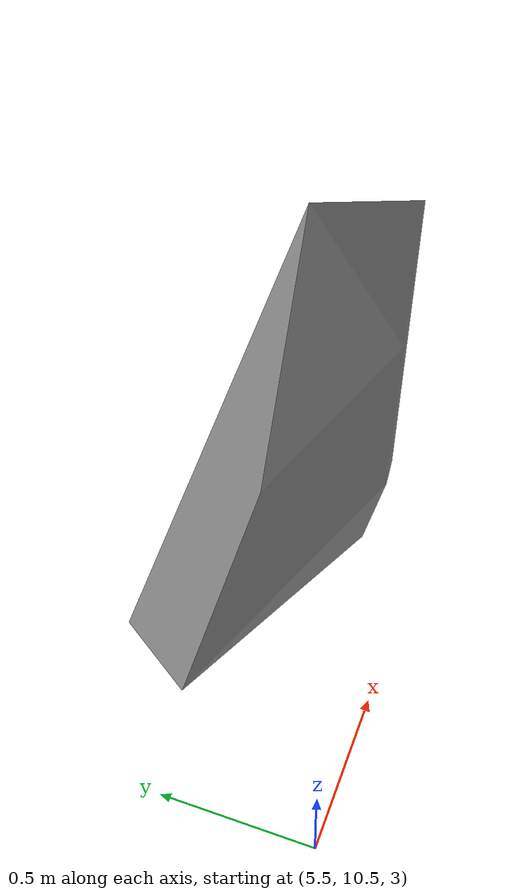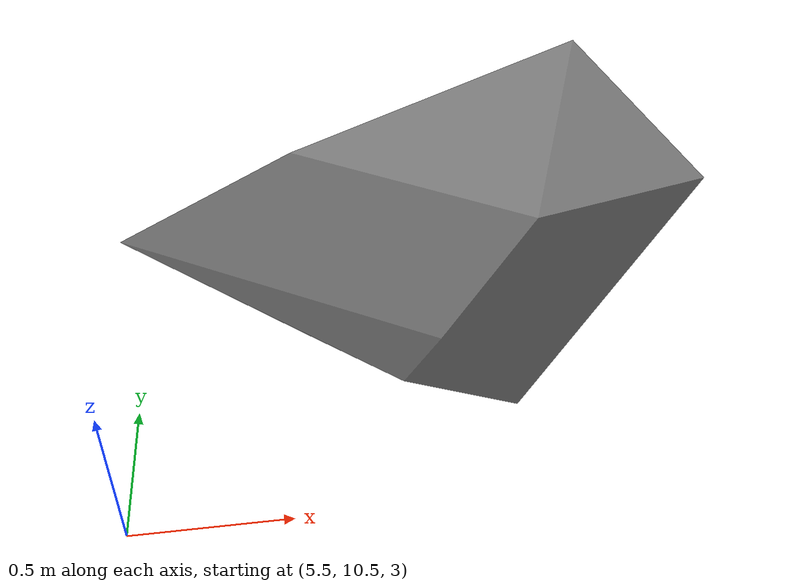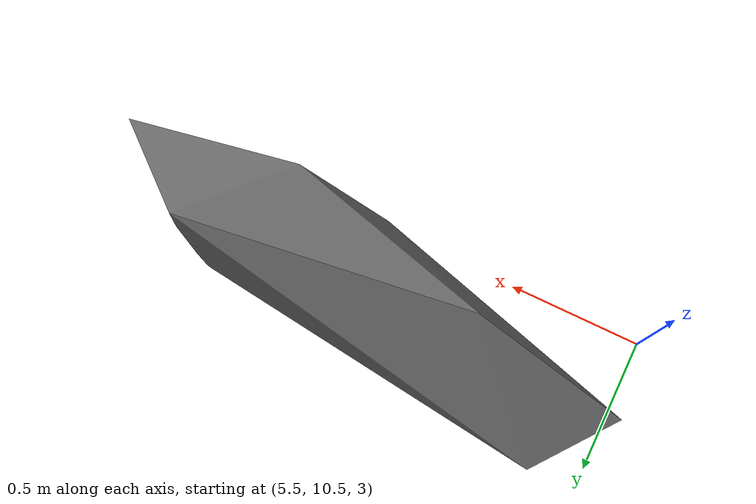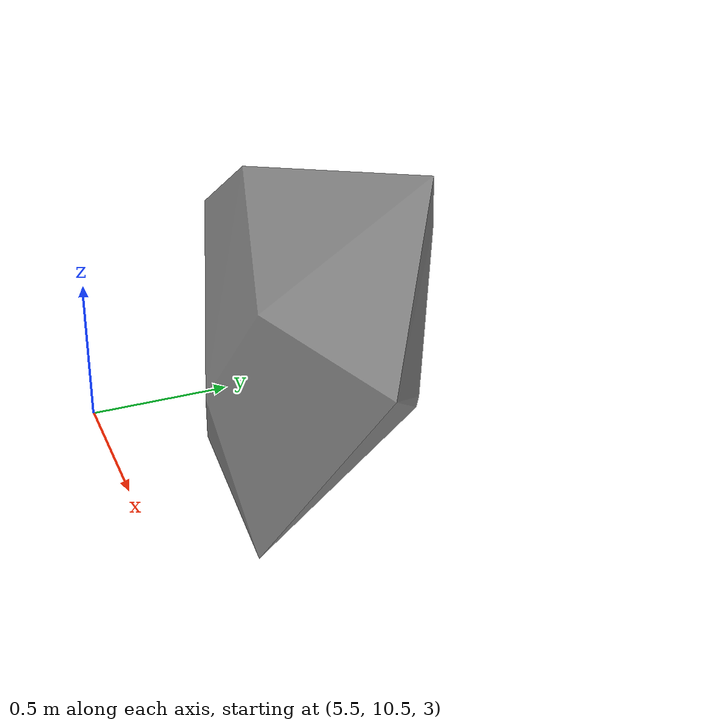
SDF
<sdf version="1.8">
 <model name="blue_mountains">
  <static>true</static>
  <link name="forest_20_21">
   <collision name="tree_31_trunk">
    <pose>6.379866 10.63728 1.888495 0 0 -1.860052</pose>
    <geometry><cylinder><radius>0.0576369</radius><length>2.956428</length></cylinder></geometry>
   </collision>
   <collision name="plant_31_crown_0">
    <pose>6.386442 10.65938 0.4102809 0 0 -1.860052</pose>
    <geometry>
     <mesh>
      <uri>model://blue_mountains/meshes/canopy_6_0.dae</uri>
      <scale>0.2305476 0.2305476 0.2179247</scale>
     </mesh>
    </geometry>
   </collision>
   <collision name="plant_31_crown_1">
    <pose>6.386442 10.65938 0.4102809 0 0 -1.860052</pose>
    <geometry>
     <mesh>
      <uri>model://blue_mountains/meshes/canopy_6_1.dae</uri>
      <scale>0.2305476 0.2305476 0.2179247</scale>
     </mesh>
    </geometry>
   </collision>
   <collision name="tree_49_trunk">
    <pose>8.976671 10.46936 2.442376 0 0 -0.8561324</pose>
    <geometry><cylinder><radius>0.06589054</radius><length>3.860585</length></cylinder></geometry>
   </collision>
   <collision name="plant_49_crown_0">
    <pose>8.959398 10.48927 0.5120838 0 0 -0.8561324</pose>
    <geometry>
     <mesh>
      <uri>model://blue_mountains/meshes/canopy_6_0.dae</uri>
      <scale>0.2635621 0.2635621 0.2845721</scale>
     </mesh>
    </geometry>
   </collision>
   <collision name="plant_49_crown_1">
    <pose>8.959398 10.48927 0.5120838 0 0 -0.8561324</pose>
    <geometry>
     <mesh>
      <uri>model://blue_mountains/meshes/canopy_6_1.dae</uri>
      <scale>0.2635621 0.2635621 0.2845721</scale>
     </mesh>
    </geometry>
   </collision>
   <collision name="tree_71_trunk">
    <pose>9.377768 12.89907 2.402436 0 0 -0.6208199</pose>
    <geometry><cylinder><radius>0.04854789</radius><length>2.449323</length></cylinder></geometry>
   </collision>
   <collision name="plant_71_crown_0">
    <pose>9.361973 12.91036 1.177774 0 0 -0.6208199</pose>
    <geometry>
     <mesh>
      <uri>model://blue_mountains/meshes/canopy_5_0.dae</uri>
      <scale>0.1941916 0.1941916 0.1841023</scale>
     </mesh>
    </geometry>
   </collision>
   <collision name="plant_71_crown_1">
    <pose>9.361973 12.91036 1.177774 0 0 -0.6208199</pose>
    <geometry>
     <mesh>
      <uri>model://blue_mountains/meshes/canopy_5_1.dae</uri>
      <scale>0.1941916 0.1941916 0.1841023</scale>
     </mesh>
    </geometry>
   </collision>
   <collision name="tree_98_trunk">
    <pose>3.744043 14.72555 2.073065 0 0 -0.6004613</pose>
    <geometry><cylinder><radius>0.04394124</radius><length>2.049709</length></cylinder></geometry>
   </collision>
   <collision name="plant_98_crown_0">
    <pose>3.729541 14.73548 1.04821 0 0 -0.6004613</pose>
    <geometry>
     <mesh><uri>model://blue_mountains/meshes/canopy_0_0.dae</uri><scale>0.175765 0.175765 0.1511649</scale></mesh>
    </geometry>
   </collision>
   <collision name="plant_98_crown_1">
    <pose>3.729541 14.73548 1.04821 0 0 -0.6004613</pose>
    <geometry>
     <mesh><uri>model://blue_mountains/meshes/canopy_0_1.dae</uri><scale>0.175765 0.175765 0.1511649</scale></mesh>
    </geometry>
   </collision>
   <collision name="tree_108_trunk">
    <pose>3.880536 13.56596 2.491982 0 0 -1.710862</pose>
    <geometry><cylinder><radius>0.0573226</radius><length>3.471873</length></cylinder></geometry>
   </collision>
   <collision name="plant_108_crown_0">
    <pose>3.883737 13.58866 0.7560458 0 0 -1.710862</pose>
    <geometry>
     <mesh>
      <uri>model://blue_mountains/meshes/canopy_3_0.dae</uri>
      <scale>0.2292904 0.2292904 0.2581176</scale>
     </mesh>
    </geometry>
   </collision>
   <collision name="plant_108_crown_1">
    <pose>3.883737 13.58866 0.7560458 0 0 -1.710862</pose>
    <geometry>
     <mesh>
      <uri>model://blue_mountains/meshes/canopy_3_1.dae</uri>
      <scale>0.2292904 0.2292904 0.2581176</scale>
     </mesh>
    </geometry>
   </collision>
   <collision name="tree_111_trunk">
    <pose>9.322657 13.23551 2.453729 0 0 -0.5603988</pose>
    <geometry><cylinder><radius>0.04911433</radius><length>2.334019</length></cylinder></geometry>
   </collision>
   <collision name="plant_111_crown_0">
    <pose>9.306016 13.24595 1.286719 0 0 -0.5603988</pose>
    <geometry>
     <mesh>
      <uri>model://blue_mountains/meshes/canopy_5_0.dae</uri>
      <scale>0.1964573 0.1964573 0.1754355</scale>
     </mesh>
    </geometry>
   </collision>
   <collision name="plant_111_crown_1">
    <pose>9.306016 13.24595 1.286719 0 0 -0.5603988</pose>
    <geometry>
     <mesh>
      <uri>model://blue_mountains/meshes/canopy_5_1.dae</uri>
      <scale>0.1964573 0.1964573 0.1754355</scale>
     </mesh>
    </geometry>
   </collision>
   <collision name="tree_116_trunk">
    <pose>6.159272 15.97954 3.494094 0 0 1.690784</pose>
    <geometry><cylinder><radius>0.05208968</radius><length>3.195226</length></cylinder></geometry>
   </collision>
   <collision name="plant_116_crown_0">
    <pose>6.161766 15.95886 1.896481 0 0 1.690784</pose>
    <geometry>
     <mesh>
      <uri>model://blue_mountains/meshes/canopy_7_0.dae</uri>
      <scale>0.2083587 0.2083587 0.2402374</scale>
     </mesh>
    </geometry>
   </collision>
   <collision name="plant_116_crown_1">
    <pose>6.161766 15.95886 1.896481 0 0 1.690784</pose>
    <geometry>
     <mesh>
      <uri>model://blue_mountains/meshes/canopy_7_1.dae</uri>
      <scale>0.2083587 0.2083587 0.2402374</scale>
     </mesh>
    </geometry>
   </collision>
   <collision name="tree_152_trunk">
    <pose>0.1194809 12.26914 1.417262 0 0 -1.061515</pose>
    <geometry><cylinder><radius>0.05635792</radius><length>2.873513</length></cylinder></geometry>
   </collision>
   <collision name="plant_152_crown_0">
    <pose>0.10849 12.28882 -0.01949477 0 0 -1.061515</pose>
    <geometry>
     <mesh>
      <uri>model://blue_mountains/meshes/canopy_2_0.dae</uri>
      <scale>0.2254317 0.2254317 0.2114198</scale>
     </mesh>
    </geometry>
   </collision>
   <collision name="plant_152_crown_1">
    <pose>0.10849 12.28882 -0.01949477 0 0 -1.061515</pose>
    <geometry>
     <mesh>
      <uri>model://blue_mountains/meshes/canopy_2_1.dae</uri>
      <scale>0.2254317 0.2254317 0.2114198</scale>
     </mesh>
    </geometry>
   </collision>
   <collision name="tree_186_trunk">
    <pose>6.978759 15.64272 3.113585 0 0 1.639733</pose>
    <geometry><cylinder><radius>0.03964755</radius><length>2.410759</length></cylinder></geometry>
   </collision>
   <collision name="plant_186_crown_0">
    <pose>6.979852 15.62689 1.908206 0 0 1.639733</pose>
    <geometry>
     <mesh>
      <uri>model://blue_mountains/meshes/canopy_3_0.dae</uri>
      <scale>0.1585902 0.1585902 0.1792287</scale>
     </mesh>
    </geometry>
   </collision>
   <collision name="plant_186_crown_1">
    <pose>6.979852 15.62689 1.908206 0 0 1.639733</pose>
    <geometry>
     <mesh>
      <uri>model://blue_mountains/meshes/canopy_3_1.dae</uri>
      <scale>0.1585902 0.1585902 0.1792287</scale>
     </mesh>
    </geometry>
   </collision>
   <collision name="tree_204_trunk">
    <pose>1.458741 11.26941 1.74769 0 0 -1.878242</pose>
    <geometry><cylinder><radius>0.06117567</radius><length>3.437599</length></cylinder></geometry>
   </collision>
   <collision name="plant_204_crown_0">
    <pose>1.466146 11.29273 0.02889013 0 0 -1.878242</pose>
    <geometry>
     <mesh>
      <uri>model://blue_mountains/meshes/canopy_4_0.dae</uri>
      <scale>0.2447027 0.2447027 0.2561584</scale>
     </mesh>
    </geometry>
   </collision>
   <collision name="plant_204_crown_1">
    <pose>1.466146 11.29273 0.02889013 0 0 -1.878242</pose>
    <geometry>
     <mesh>
      <uri>model://blue_mountains/meshes/canopy_4_1.dae</uri>
      <scale>0.2447027 0.2447027 0.2561584</scale>
     </mesh>
    </geometry>
   </collision>
   <collision name="tree_226_trunk">
    <pose>1.113793 17.50727 2.722496 0 0 -2.008252</pose>
    <geometry><cylinder><radius>0.05099225</radius><length>2.611283</length></cylinder></geometry>
   </collision>
   <collision name="plant_226_crown_0">
    <pose>1.122434 17.52575 1.416855 0 0 -2.008252</pose>
    <geometry>
     <mesh><uri>model://blue_mountains/meshes/canopy_7_0.dae</uri><scale>0.203969 0.203969 0.1963328</scale></mesh>
    </geometry>
   </collision>
   <collision name="plant_226_crown_1">
    <pose>1.122434 17.52575 1.416855 0 0 -2.008252</pose>
    <geometry>
     <mesh><uri>model://blue_mountains/meshes/canopy_7_1.dae</uri><scale>0.203969 0.203969 0.1963328</scale></mesh>
    </geometry>
   </collision>
   <collision name="tree_241_trunk">
    <pose>2.780284 15.36277 2.721349 0 0 2.863309</pose>
    <geometry><cylinder><radius>0.0666869</radius><length>3.31436</length></cylinder></geometry>
   </collision>
   <collision name="plant_241_crown_0">
    <pose>2.805933 15.35544 1.064169 0 0 2.863309</pose>
    <geometry>
     <mesh>
      <uri>model://blue_mountains/meshes/canopy_3_0.dae</uri>
      <scale>0.2667476 0.2667476 0.2464072</scale>
     </mesh>
    </geometry>
   </collision>
   <collision name="plant_241_crown_1">
    <pose>2.805933 15.35544 1.064169 0 0 2.863309</pose>
    <geometry>
     <mesh>
      <uri>model://blue_mountains/meshes/canopy_3_1.dae</uri>
      <scale>0.2667476 0.2667476 0.2464072</scale>
     </mesh>
    </geometry>
   </collision>
   <collision name="tree_251_trunk">
    <pose>9.594163 12.07111 2.536879 0 0 2.867702</pose>
    <geometry><cylinder><radius>0.06856711</radius><length>3.208149</length></cylinder></geometry>
   </collision>
   <collision name="plant_251_crown_0">
    <pose>9.620567 12.06369 0.9328041 0 0 2.867702</pose>
    <geometry>
     <mesh>
      <uri>model://blue_mountains/meshes/canopy_2_0.dae</uri>
      <scale>0.2742684 0.2742684 0.2360408</scale>
     </mesh>
    </geometry>
   </collision>
   <collision name="plant_251_crown_1">
    <pose>9.620567 12.06369 0.9328041 0 0 2.867702</pose>
    <geometry>
     <mesh>
      <uri>model://blue_mountains/meshes/canopy_2_1.dae</uri>
      <scale>0.2742684 0.2742684 0.2360408</scale>
     </mesh>
    </geometry>
   </collision>
   <collision name="tree_273_trunk">
    <pose>8.134455 12.02082 2.575204 0 0 1.651331</pose>
    <geometry><cylinder><radius>0.06492998</radius><length>3.508485</length></cylinder></geometry>
   </collision>
   <collision name="plant_273_crown_0">
    <pose>8.136544 11.99493 0.8209615 0 0 1.651331</pose>
    <geometry>
     <mesh>
      <uri>model://blue_mountains/meshes/canopy_2_0.dae</uri>
      <scale>0.2597199 0.2597199 0.2581381</scale>
     </mesh>
    </geometry>
   </collision>
   <collision name="plant_273_crown_1">
    <pose>8.136544 11.99493 0.8209615 0 0 1.651331</pose>
    <geometry>
     <mesh>
      <uri>model://blue_mountains/meshes/canopy_2_1.dae</uri>
      <scale>0.2597199 0.2597199 0.2581381</scale>
     </mesh>
    </geometry>
   </collision>
   <collision name="tree_278_trunk">
    <pose>5.88917 11.54892 1.985947 0 0 -2.324263</pose>
    <geometry><cylinder><radius>0.05844086</radius><length>2.898229</length></cylinder></geometry>
   </collision>
   <collision name="plant_278_crown_0">
    <pose>5.905164 11.56597 0.536833 0 0 -2.324263</pose>
    <geometry>
     <mesh>
      <uri>model://blue_mountains/meshes/canopy_5_0.dae</uri>
      <scale>0.2337634 0.2337634 0.2178441</scale>
     </mesh>
    </geometry>
   </collision>
   <collision name="plant_278_crown_1">
    <pose>5.905164 11.56597 0.536833 0 0 -2.324263</pose>
    <geometry>
     <mesh>
      <uri>model://blue_mountains/meshes/canopy_5_1.dae</uri>
      <scale>0.2337634 0.2337634 0.2178441</scale>
     </mesh>
    </geometry>
   </collision>
   <collision name="tree_281_trunk">
    <pose>5.937879 12.30141 2.448335 0 0 1.252314</pose>
    <geometry><cylinder><radius>0.06133363</radius><length>3.509118</length></cylinder></geometry>
   </collision>
   <collision name="plant_281_crown_0">
    <pose>5.930197 12.27811 0.6937766 0 0 1.252314</pose>
    <geometry>
     <mesh>
      <uri>model://blue_mountains/meshes/canopy_5_0.dae</uri>
      <scale>0.2453345 0.2453345 0.2637613</scale>
     </mesh>
    </geometry>
   </collision>
   <collision name="plant_281_crown_1">
    <pose>5.930197 12.27811 0.6937766 0 0 1.252314</pose>
    <geometry>
     <mesh>
      <uri>model://blue_mountains/meshes/canopy_5_1.dae</uri>
      <scale>0.2453345 0.2453345 0.2637613</scale>
     </mesh>
    </geometry>
   </collision>
   <collision name="tree_321_trunk">
    <pose>2.726479 11.79832 1.512144 0 0 -0.04810268</pose>
    <geometry><cylinder><radius>0.04526947</radius><length>2.56588</length></cylinder></geometry>
   </collision>
   <collision name="plant_321_crown_0">
    <pose>2.708392 11.79919 0.2292037 0 0 -0.04810268</pose>
    <geometry>
     <mesh>
      <uri>model://blue_mountains/meshes/canopy_3_0.dae</uri>
      <scale>0.1810779 0.1810779 0.1907613</scale>
     </mesh>
    </geometry>
   </collision>
   <collision name="plant_321_crown_1">
    <pose>2.708392 11.79919 0.2292037 0 0 -0.04810268</pose>
    <geometry>
     <mesh>
      <uri>model://blue_mountains/meshes/canopy_3_1.dae</uri>
      <scale>0.1810779 0.1810779 0.1907613</scale>
     </mesh>
    </geometry>
   </collision>
   <collision name="tree_354_trunk">
    <pose>3.56736 13.63378 2.408631 0 0 2.56044</pose>
    <geometry><cylinder><radius>0.06582548</radius><length>3.377189</length></cylinder></geometry>
   </collision>
   <collision name="plant_354_crown_0">
    <pose>3.589368 13.61933 0.7200365 0 0 2.56044</pose>
    <geometry>
     <mesh>
      <uri>model://blue_mountains/meshes/canopy_6_0.dae</uri>
      <scale>0.2633019 0.2633019 0.2489399</scale>
     </mesh>
    </geometry>
   </collision>
   <collision name="plant_354_crown_1">
    <pose>3.589368 13.61933 0.7200365 0 0 2.56044</pose>
    <geometry>
     <mesh>
      <uri>model://blue_mountains/meshes/canopy_6_1.dae</uri>
      <scale>0.2633019 0.2633019 0.2489399</scale>
     </mesh>
    </geometry>
   </collision>
   <collision name="tree_383_trunk">
    <pose>4.898305 16.58007 3.300352 0 0 1.057084</pose>
    <geometry><cylinder><radius>0.05451416</radius><length>2.848364</length></cylinder></geometry>
   </collision>
   <collision name="plant_383_crown_0">
    <pose>4.887589 16.56108 1.87617 0 0 1.057084</pose>
    <geometry>
     <mesh>
      <uri>model://blue_mountains/meshes/canopy_0_0.dae</uri>
      <scale>0.2180567 0.2180567 0.2100652</scale>
     </mesh>
    </geometry>
   </collision>
   <collision name="plant_383_crown_1">
    <pose>4.887589 16.56108 1.87617 0 0 1.057084</pose>
    <geometry>
     <mesh>
      <uri>model://blue_mountains/meshes/canopy_0_1.dae</uri>
      <scale>0.2180567 0.2180567 0.2100652</scale>
     </mesh>
    </geometry>
   </collision>
   <collision name="tree_384_trunk">
    <pose>9.569517 15.49622 3.641193 0 0 2.700063</pose>
    <geometry><cylinder><radius>0.05212101</radius><length>2.872101</length></cylinder></geometry>
   </collision>
   <collision name="plant_384_crown_0">
    <pose>9.588366 15.48731 2.205142 0 0 2.700063</pose>
    <geometry>
     <mesh><uri>model://blue_mountains/meshes/canopy_1_0.dae</uri><scale>0.208484 0.208484 0.2121357</scale></mesh>
    </geometry>
   </collision>
   <collision name="plant_384_crown_1">
    <pose>9.588366 15.48731 2.205142 0 0 2.700063</pose>
    <geometry>
     <mesh><uri>model://blue_mountains/meshes/canopy_1_1.dae</uri><scale>0.208484 0.208484 0.2121357</scale></mesh>
    </geometry>
   </collision>
   <collision name="tree_393_trunk">
    <pose>7.766581 12.04938 2.154674 0 0 -0.3248179</pose>
    <geometry><cylinder><radius>0.0589319</radius><length>2.694584</length></cylinder></geometry>
   </collision>
   <collision name="plant_393_crown_0">
    <pose>7.744241 12.05691 0.8073821 0 0 -0.3248179</pose>
    <geometry>
     <mesh>
      <uri>model://blue_mountains/meshes/canopy_5_0.dae</uri>
      <scale>0.2357276 0.2357276 0.2025372</scale>
     </mesh>
    </geometry>
   </collision>
   <collision name="plant_393_crown_1">
    <pose>7.744241 12.05691 0.8073821 0 0 -0.3248179</pose>
    <geometry>
     <mesh>
      <uri>model://blue_mountains/meshes/canopy_5_1.dae</uri>
      <scale>0.2357276 0.2357276 0.2025372</scale>
     </mesh>
    </geometry>
   </collision>
   <collision name="tree_395_trunk">
    <pose>4.418597 13.56654 1.793879 0 0 0.02623719</pose>
    <geometry><cylinder><radius>0.03738205</radius><length>1.932475</length></cylinder></geometry>
   </collision>
   <collision name="plant_395_crown_0">
    <pose>4.403649 13.56615 0.8276415 0 0 0.02623719</pose>
    <geometry>
     <mesh>
      <uri>model://blue_mountains/meshes/canopy_7_0.dae</uri>
      <scale>0.1495282 0.1495282 0.1452958</scale>
     </mesh>
    </geometry>
   </collision>
   <collision name="plant_395_crown_1">
    <pose>4.403649 13.56615 0.8276415 0 0 0.02623719</pose>
    <geometry>
     <mesh>
      <uri>model://blue_mountains/meshes/canopy_7_1.dae</uri>
      <scale>0.1495282 0.1495282 0.1452958</scale>
     </mesh>
    </geometry>
   </collision>
   <collision name="tree_426_trunk">
    <pose>3.23488 12.67244 1.798359 0 0 -2.482249</pose>
    <geometry><cylinder><radius>0.0562926</radius><length>2.686811</length></cylinder></geometry>
   </collision>
   <collision name="plant_426_crown_0">
    <pose>3.252677 12.68624 0.4549537 0 0 -2.482249</pose>
    <geometry>
     <mesh>
      <uri>model://blue_mountains/meshes/canopy_3_0.dae</uri>
      <scale>0.2251704 0.2251704 0.1997519</scale>
     </mesh>
    </geometry>
   </collision>
   <collision name="plant_426_crown_1">
    <pose>3.252677 12.68624 0.4549537 0 0 -2.482249</pose>
    <geometry>
     <mesh>
      <uri>model://blue_mountains/meshes/canopy_3_1.dae</uri>
      <scale>0.2251704 0.2251704 0.1997519</scale>
     </mesh>
    </geometry>
   </collision>
   <collision name="tree_440_trunk">
    <pose>0.8902983 14.16559 1.585293 0 0 2.112642</pose>
    <geometry><cylinder><radius>0.03849874</radius><length>2.328004</length></cylinder></geometry>
   </collision>
   <collision name="plant_440_crown_0">
    <pose>0.8982401 14.15239 0.4212909 0 0 2.112642</pose>
    <geometry>
     <mesh><uri>model://blue_mountains/meshes/canopy_4_0.dae</uri><scale>0.153995 0.153995 0.1734751</scale></mesh>
    </geometry>
   </collision>
   <collision name="plant_440_crown_1">
    <pose>0.8982401 14.15239 0.4212909 0 0 2.112642</pose>
    <geometry>
     <mesh><uri>model://blue_mountains/meshes/canopy_4_1.dae</uri><scale>0.153995 0.153995 0.1734751</scale></mesh>
    </geometry>
   </collision>
   <collision name="tree_442_trunk">
    <pose>1.735989 12.54558 1.681755 0 0 2.518587</pose>
    <geometry><cylinder><radius>0.05178406</radius><length>2.915134</length></cylinder></geometry>
   </collision>
   <collision name="plant_442_crown_0">
    <pose>1.752811 12.53349 0.2241876 0 0 2.518587</pose>
    <geometry>
     <mesh>
      <uri>model://blue_mountains/meshes/canopy_4_0.dae</uri>
      <scale>0.2071362 0.2071362 0.2172261</scale>
     </mesh>
    </geometry>
   </collision>
   <collision name="plant_442_crown_1">
    <pose>1.752811 12.53349 0.2241876 0 0 2.518587</pose>
    <geometry>
     <mesh>
      <uri>model://blue_mountains/meshes/canopy_4_1.dae</uri>
      <scale>0.2071362 0.2071362 0.2172261</scale>
     </mesh>
    </geometry>
   </collision>
   <collision name="tree_458_trunk">
    <pose>4.701959 12.30806 1.895344 0 0 1.813126</pose>
    <geometry><cylinder><radius>0.04856264</radius><length>2.675079</length></cylinder></geometry>
   </collision>
   <collision name="plant_458_crown_0">
    <pose>4.70662 12.2892 0.5578046 0 0 1.813126</pose>
    <geometry>
     <mesh>
      <uri>model://blue_mountains/meshes/canopy_8_0.dae</uri>
      <scale>0.1942506 0.1942506 0.1990498</scale>
     </mesh>
    </geometry>
   </collision>
   <collision name="plant_458_crown_1">
    <pose>4.70662 12.2892 0.5578046 0 0 1.813126</pose>
    <geometry>
     <mesh>
      <uri>model://blue_mountains/meshes/canopy_8_1.dae</uri>
      <scale>0.1942506 0.1942506 0.1990498</scale>
     </mesh>
    </geometry>
   </collision>
   <collision name="tree_463_trunk">
    <pose>9.878431 11.81279 2.446057 0 0 0.238661</pose>
    <geometry><cylinder><radius>0.06203088</radius><length>3.149132</length></cylinder></geometry>
   </collision>
   <collision name="plant_463_crown_0">
    <pose>9.854321 11.80692 0.871491 0 0 0.238661</pose>
    <geometry>
     <mesh>
      <uri>model://blue_mountains/meshes/canopy_8_0.dae</uri>
      <scale>0.2481235 0.2481235 0.2343236</scale>
     </mesh>
    </geometry>
   </collision>
   <collision name="plant_463_crown_1">
    <pose>9.854321 11.80692 0.871491 0 0 0.238661</pose>
    <geometry>
     <mesh>
      <uri>model://blue_mountains/meshes/canopy_8_1.dae</uri>
      <scale>0.2481235 0.2481235 0.2343236</scale>
     </mesh>
    </geometry>
   </collision>
   <collision name="tree_468_trunk">
    <pose>5.80101 9.990483 2.049689 0 0 -0.5242504</pose>
    <geometry><cylinder><radius>0.05792912</radius><length>3.556268</length></cylinder></geometry>
   </collision>
   <collision name="plant_468_crown_0">
    <pose>5.780951 10.00208 0.2715549 0 0 -0.5242504</pose>
    <geometry>
     <mesh>
      <uri>model://blue_mountains/meshes/canopy_7_0.dae</uri>
      <scale>0.2317165 0.2317165 0.2673828</scale>
     </mesh>
    </geometry>
   </collision>
   <collision name="plant_468_crown_1">
    <pose>5.780951 10.00208 0.2715549 0 0 -0.5242504</pose>
    <geometry>
     <mesh>
      <uri>model://blue_mountains/meshes/canopy_7_1.dae</uri>
      <scale>0.2317165 0.2317165 0.2673828</scale>
     </mesh>
    </geometry>
   </collision>
   <collision name="plant_475_crown_0">
    <pose>9.390024 19.91667 4.684523 0 0 0</pose>
    <geometry>
     <mesh>
      <uri>model://blue_mountains/meshes/canopy_14_0.dae</uri>
      <scale>0.07575656 0.07575656 0.06926315</scale>
     </mesh>
    </geometry>
   </collision>
   <collision name="plant_475_crown_1">
    <pose>9.390024 19.91667 4.684523 0 0 0</pose>
    <geometry>
     <mesh>
      <uri>model://blue_mountains/meshes/canopy_14_1.dae</uri>
      <scale>0.07575656 0.07575656 0.06926315</scale>
     </mesh>
    </geometry>
   </collision>
   <collision name="plant_566_crown_0">
    <pose>3.077231 19.84606 11.62574 0 0 -3.027501</pose>
    <geometry>
     <mesh>
      <uri>model://blue_mountains/meshes/canopy_9_0.dae</uri>
      <scale>0.03921331 0.03921331 0.02823358</scale>
     </mesh>
    </geometry>
   </collision>
   <collision name="plant_566_crown_1">
    <pose>3.077231 19.84606 11.62574 0 0 -3.027501</pose>
    <geometry>
     <mesh>
      <uri>model://blue_mountains/meshes/canopy_9_1.dae</uri>
      <scale>0.03921331 0.03921331 0.02823358</scale>
     </mesh>
    </geometry>
   </collision>
   <visual name="forest_visual">
    <geometry><mesh><uri>model://blue_mountains/meshes/forest_20_21.dae</uri></mesh></geometry>
    <cast_shadows>false</cast_shadows>
   </visual>
  </link>
 </model>
</sdf>
